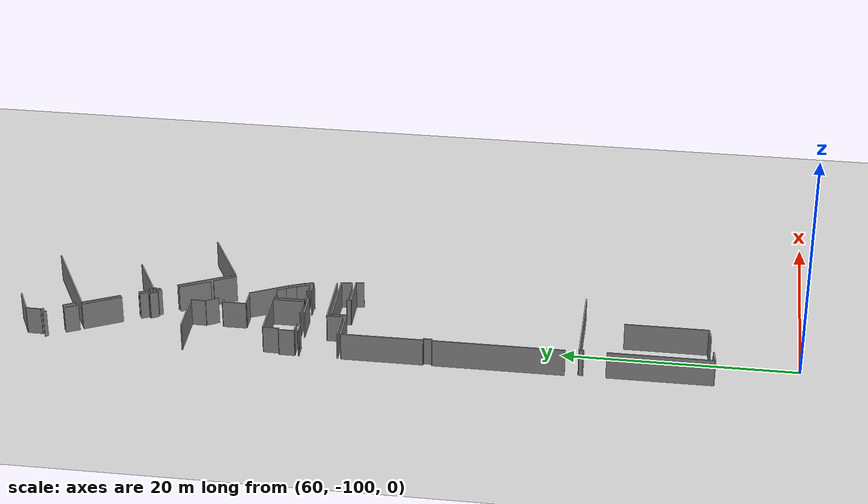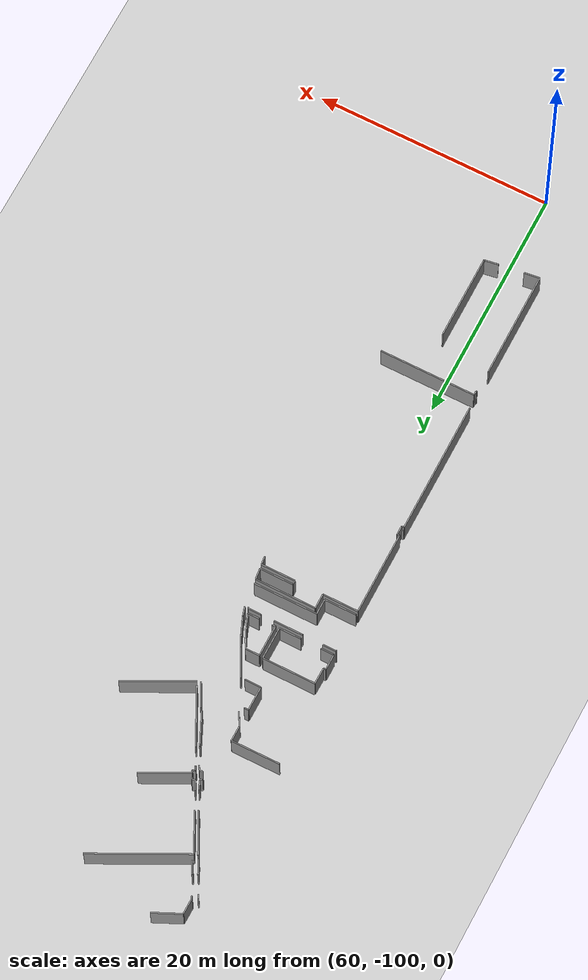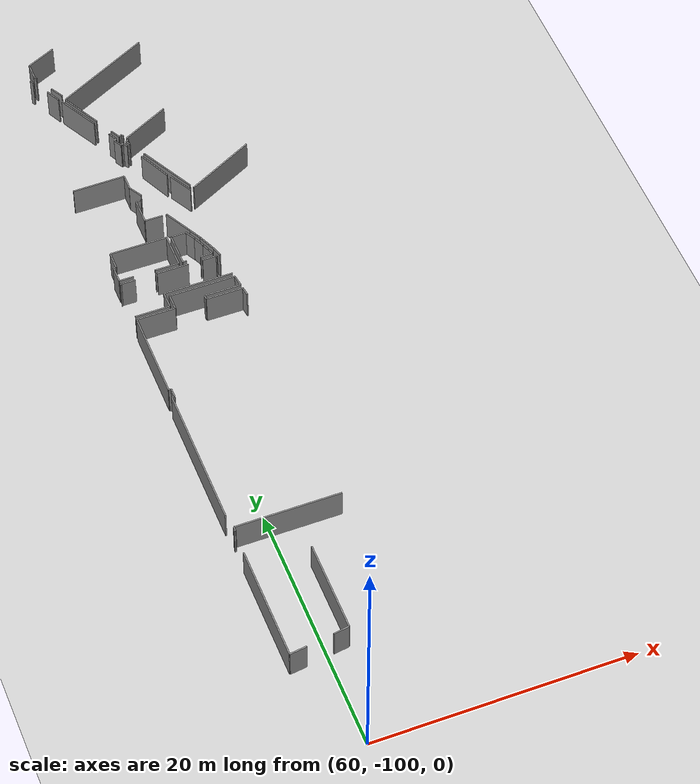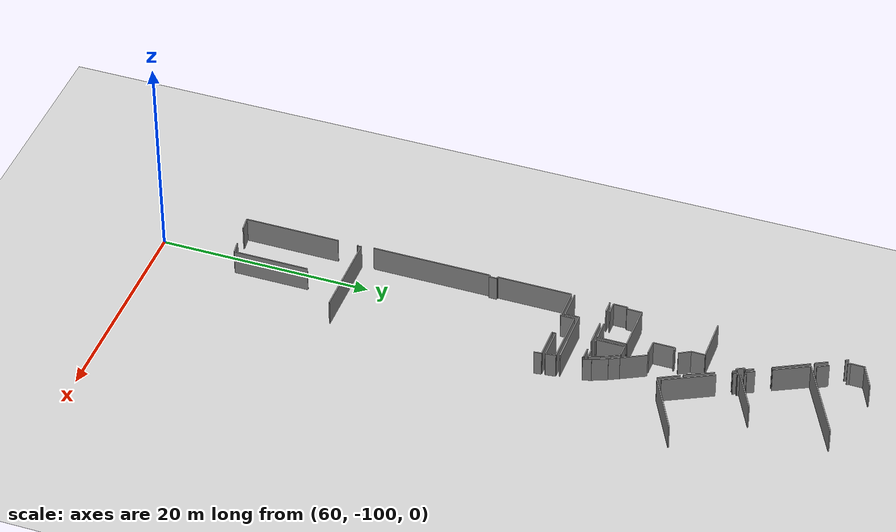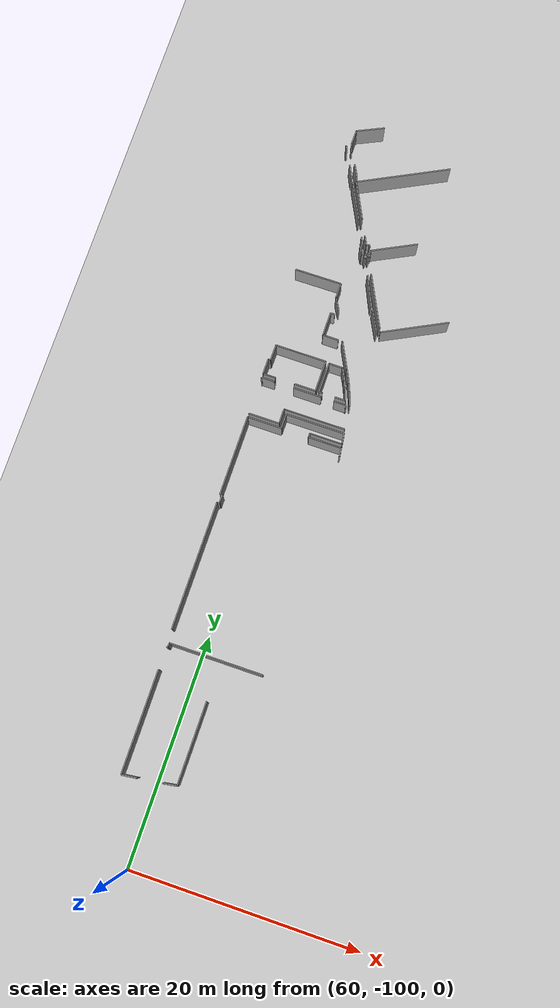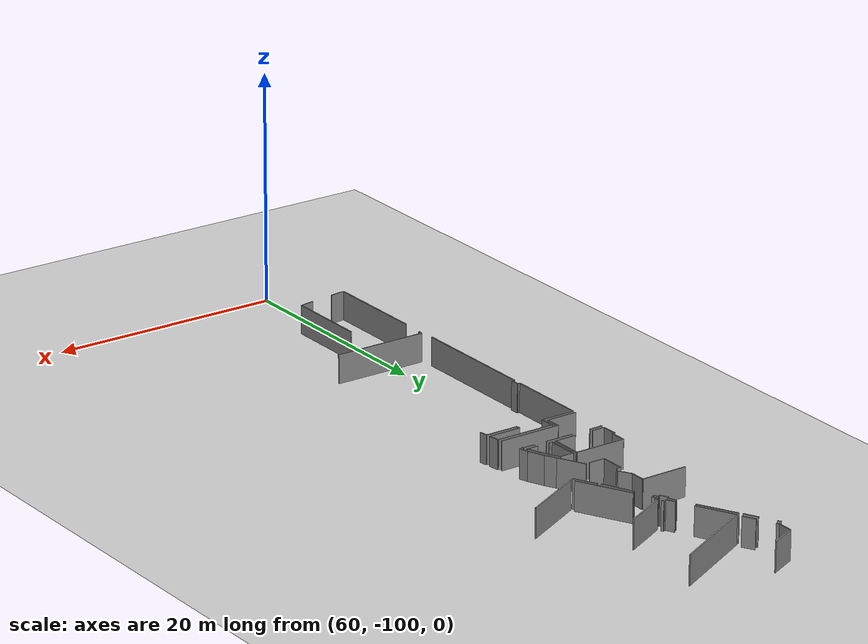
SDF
<sdf version="1.6">
 <world name="default">
  <model name="ground_plane">
   <static>1</static>
   <link name="link">
    <collision name="collision">
     <geometry><plane><normal>0 0 1</normal><size>100 100</size></plane></geometry>
     <surface><friction><ode><mu>100</mu><mu2>50</mu2></ode></friction></surface>
    </collision>
    <visual name="visual">
     <cast_shadows>0</cast_shadows>
     <geometry><plane><normal>0 0 1</normal><size>100 100</size></plane></geometry>
     <material>
      <script><uri>file://media/materials/scripts/gazebo.material</uri><name>Gazebo/Grey</name></script>
     </material>
    </visual>
   </link>
  </model>
  <model name="0510045925_40">
   <static>1</static>
   <link name="Wall_1786">
    <collision name="Wall_1786_Collision">
     <geometry><box><size>1.14283598722 0.1 2.5</size></box></geometry>
     <pose>0.571417993608 0 1.25 0 0 0</pose>
    </collision>
    <visual name="Wall_1786_Visual">
     <pose>0.571417993608 0 1.25 0 0 0</pose>
     <geometry><box><size>1.14283598722 0.1 2.5</size></box></geometry>
     <material>
      <script><uri>file://media/materials/scripts/gazebo.material</uri><name>Gazebo/Grey</name></script>
      <ambient>1 1 1 1</ambient>
     </material>
    </visual>
    <pose>192.903276567 -139.383188244 0 0 0 2.07110013863</pose>
   </link>
   <link name="Wall_1787">
    <collision name="Wall_1787_Collision">
     <geometry><box><size>0.269756081567 0.1 2.5</size></box></geometry>
     <pose>0.134878040784 0 1.25 0 0 0</pose>
    </collision>
    <visual name="Wall_1787_Visual">
     <pose>0.134878040784 0 1.25 0 0 0</pose>
     <geometry><box><size>0.269756081567 0.1 2.5</size></box></geometry>
     <material>
      <script><uri>file://media/materials/scripts/gazebo.material</uri><name>Gazebo/Grey</name></script>
      <ambient>1 1 1 1</ambient>
     </material>
    </visual>
    <pose>191.623359813 -136.926651608 0 0 0 1.98730113189</pose>
   </link>
   <link name="Wall_1788">
    <collision name="Wall_1788_Collision">
     <geometry><box><size>1.27564668014 0.1 2.5</size></box></geometry>
     <pose>0.637823340068 0 1.25 0 0 0</pose>
    </collision>
    <visual name="Wall_1788_Visual">
     <pose>0.637823340068 0 1.25 0 0 0</pose>
     <geometry><box><size>1.27564668014 0.1 2.5</size></box></geometry>
     <material>
      <script><uri>file://media/materials/scripts/gazebo.material</uri><name>Gazebo/Grey</name></script>
      <ambient>1 1 1 1</ambient>
     </material>
    </visual>
    <pose>191.514225527 -136.679957361 0 0 0 1.56243997534</pose>
   </link>
   <link name="Wall_1789">
    <collision name="Wall_1789_Collision">
     <geometry><box><size>2.46984820582 0.1 2.5</size></box></geometry>
     <pose>1.23492410291 0 1.25 0 0 0</pose>
    </collision>
    <visual name="Wall_1789_Visual">
     <pose>1.23492410291 0 1.25 0 0 0</pose>
     <geometry><box><size>2.46984820582 0.1 2.5</size></box></geometry>
     <material>
      <script><uri>file://media/materials/scripts/gazebo.material</uri><name>Gazebo/Grey</name></script>
      <ambient>1 1 1 1</ambient>
     </material>
    </visual>
    <pose>191.524885155 -135.404355219 0 0 0 0.437955658448</pose>
   </link>
   <link name="Wall_1792">
    <collision name="Wall_1792_Collision">
     <geometry><box><size>0.318721193554 0.1 2.5</size></box></geometry>
     <pose>0.159360596777 0 1.25 0 0 0</pose>
    </collision>
    <visual name="Wall_1792_Visual">
     <pose>0.159360596777 0 1.25 0 0 0</pose>
     <geometry><box><size>0.318721193554 0.1 2.5</size></box></geometry>
     <material>
      <script><uri>file://media/materials/scripts/gazebo.material</uri><name>Gazebo/Grey</name></script>
      <ambient>1 1 1 1</ambient>
     </material>
    </visual>
    <pose>191.104845055 -136.962691302 0 0 0 -1.0690346114</pose>
   </link>
   <link name="Wall_1793">
    <collision name="Wall_1793_Collision">
     <geometry><box><size>1.2517577445 0.1 2.5</size></box></geometry>
     <pose>0.625878872251 0 1.25 0 0 0</pose>
    </collision>
    <visual name="Wall_1793_Visual">
     <pose>0.625878872251 0 1.25 0 0 0</pose>
     <geometry><box><size>1.2517577445 0.1 2.5</size></box></geometry>
     <material>
      <script><uri>file://media/materials/scripts/gazebo.material</uri><name>Gazebo/Grey</name></script>
      <ambient>1 1 1 1</ambient>
     </material>
    </visual>
    <pose>191.974366133 -138.582193345 0 0 0 -1.11567226908</pose>
   </link>
   <link name="Wall_1794">
    <collision name="Wall_1794_Collision">
     <geometry><box><size>8.23932052762 0.1 2.5</size></box></geometry>
     <pose>4.11966026381 0 1.25 0 0 0</pose>
    </collision>
    <visual name="Wall_1794_Visual">
     <pose>4.11966026381 0 1.25 0 0 0</pose>
     <geometry><box><size>8.23932052762 0.1 2.5</size></box></geometry>
     <material>
      <script><uri>file://media/materials/scripts/gazebo.material</uri><name>Gazebo/Grey</name></script>
      <ambient>1 1 1 1</ambient>
     </material>
    </visual>
    <pose>193.014187457 -139.861094896 0 0 0 0.471334572719</pose>
   </link>
   <link name="Wall_1802">
    <collision name="Wall_1802_Collision">
     <geometry><box><size>0.208212626875 0.1 2.5</size></box></geometry>
     <pose>0.104106313437 0 1.25 0 0 0</pose>
    </collision>
    <visual name="Wall_1802_Visual">
     <pose>0.104106313437 0 1.25 0 0 0</pose>
     <geometry><box><size>0.208212626875 0.1 2.5</size></box></geometry>
     <material>
      <script><uri>file://media/materials/scripts/gazebo.material</uri><name>Gazebo/Grey</name></script>
      <ambient>1 1 1 1</ambient>
     </material>
    </visual>
    <pose>195.978071623 -145.123905485 0 0 0 2.09553657682</pose>
   </link>
   <link name="Wall_1803">
    <collision name="Wall_1803_Collision">
     <geometry><box><size>0.252465843436 0.1 2.5</size></box></geometry>
     <pose>0.126232921718 0 1.25 0 0 0</pose>
    </collision>
    <visual name="Wall_1803_Visual">
     <pose>0.126232921718 0 1.25 0 0 0</pose>
     <geometry><box><size>0.252465843436 0.1 2.5</size></box></geometry>
     <material>
      <script><uri>file://media/materials/scripts/gazebo.material</uri><name>Gazebo/Grey</name></script>
      <ambient>1 1 1 1</ambient>
     </material>
    </visual>
    <pose>195.873759549 -144.943707013 0 0 0 -2.69458020059</pose>
   </link>
   <link name="Wall_1804">
    <collision name="Wall_1804_Collision">
     <geometry><box><size>0.831318528219 0.1 2.5</size></box></geometry>
     <pose>0.41565926411 0 1.25 0 0 0</pose>
    </collision>
    <visual name="Wall_1804_Visual">
     <pose>0.41565926411 0 1.25 0 0 0</pose>
     <geometry><box><size>0.831318528219 0.1 2.5</size></box></geometry>
     <material>
      <script><uri>file://media/materials/scripts/gazebo.material</uri><name>Gazebo/Grey</name></script>
      <ambient>1 1 1 1</ambient>
     </material>
    </visual>
    <pose>195.646100353 -145.052841298 0 0 0 2.04168029228</pose>
   </link>
   <link name="Wall_1805">
    <collision name="Wall_1805_Collision">
     <geometry><box><size>3.42667240961 0.1 2.5</size></box></geometry>
     <pose>1.7133362048 0 1.25 0 0 0</pose>
    </collision>
    <visual name="Wall_1805_Visual">
     <pose>1.7133362048 0 1.25 0 0 0</pose>
     <geometry><box><size>3.42667240961 0.1 2.5</size></box></geometry>
     <material>
      <script><uri>file://media/materials/scripts/gazebo.material</uri><name>Gazebo/Grey</name></script>
      <ambient>1 1 1 1</ambient>
     </material>
    </visual>
    <pose>194.555265095 -142.921677115 0 0 0 2.03725943018</pose>
   </link>
   <link name="Wall_1806">
    <collision name="Wall_1806_Collision">
     <geometry><box><size>4.12377671291 0.1 2.5</size></box></geometry>
     <pose>2.06188835645 0 1.25 0 0 0</pose>
    </collision>
    <visual name="Wall_1806_Visual">
     <pose>2.06188835645 0 1.25 0 0 0</pose>
     <geometry><box><size>4.12377671291 0.1 2.5</size></box></geometry>
     <material>
      <script><uri>file://media/materials/scripts/gazebo.material</uri><name>Gazebo/Grey</name></script>
      <ambient>1 1 1 1</ambient>
     </material>
    </visual>
    <pose>196.128067816 -145.414507246 0 0 0 0.470446106003</pose>
   </link>
   <link name="Wall_1813">
    <collision name="Wall_1813_Collision">
     <geometry><box><size>4.86951748035 0.1 2.5</size></box></geometry>
     <pose>2.43475874018 0 1.25 0 0 0</pose>
    </collision>
    <visual name="Wall_1813_Visual">
     <pose>2.43475874018 0 1.25 0 0 0</pose>
     <geometry><box><size>4.86951748035 0.1 2.5</size></box></geometry>
     <material>
      <script><uri>file://media/materials/scripts/gazebo.material</uri><name>Gazebo/Grey</name></script>
      <ambient>1 1 1 1</ambient>
     </material>
    </visual>
    <pose>199.064033908 -151.740996421 0 0 0 2.04148328247</pose>
   </link>
   <link name="Wall_1814">
    <collision name="Wall_1814_Collision">
     <geometry><box><size>0.369115963655 0.1 2.5</size></box></geometry>
     <pose>0.184557981828 0 1.25 0 0 0</pose>
    </collision>
    <visual name="Wall_1814_Visual">
     <pose>0.184557981828 0 1.25 0 0 0</pose>
     <geometry><box><size>0.369115963655 0.1 2.5</size></box></geometry>
     <material>
      <script><uri>file://media/materials/scripts/gazebo.material</uri><name>Gazebo/Grey</name></script>
      <ambient>1 1 1 1</ambient>
     </material>
    </visual>
    <pose>196.16410751 -146.06499835 0 0 0 2.05966159718</pose>
   </link>
   <link name="Wall_1815">
    <collision name="Wall_1815_Collision">
     <geometry><box><size>0.245527188292 0.1 2.5</size></box></geometry>
     <pose>0.122763594146 0 1.25 0 0 0</pose>
    </collision>
    <visual name="Wall_1815_Visual">
     <pose>0.122763594146 0 1.25 0 0 0</pose>
     <geometry><box><size>0.245527188292 0.1 2.5</size></box></geometry>
     <material>
      <script><uri>file://media/materials/scripts/gazebo.material</uri><name>Gazebo/Grey</name></script>
      <ambient>1 1 1 1</ambient>
     </material>
    </visual>
    <pose>195.990761656 -145.739118296 0 0 0 0.508504125957</pose>
   </link>
   <link name="Wall_1816">
    <collision name="Wall_1816_Collision">
     <geometry><box><size>0.219105101264 0.1 2.5</size></box></geometry>
     <pose>0.109552550632 0 1.25 0 0 0</pose>
    </collision>
    <visual name="Wall_1816_Visual">
     <pose>0.109552550632 0 1.25 0 0 0</pose>
     <geometry><box><size>0.219105101264 0.1 2.5</size></box></geometry>
     <material>
      <script><uri>file://media/materials/scripts/gazebo.material</uri><name>Gazebo/Grey</name></script>
      <ambient>1 1 1 1</ambient>
     </material>
    </visual>
    <pose>196.205223218 -145.619578183 0 0 0 1.93065159534</pose>
   </link>
   <link name="Wall_1820">
    <collision name="Wall_1820_Collision">
     <geometry><box><size>3.50888587217 0.1 2.5</size></box></geometry>
     <pose>1.75444293609 0 1.25 0 0 0</pose>
    </collision>
    <visual name="Wall_1820_Visual">
     <pose>1.75444293609 0 1.25 0 0 0</pose>
     <geometry><box><size>3.50888587217 0.1 2.5</size></box></geometry>
     <material>
      <script><uri>file://media/materials/scripts/gazebo.material</uri><name>Gazebo/Grey</name></script>
      <ambient>1 1 1 1</ambient>
     </material>
    </visual>
    <pose>192.703281643 -139.956016345 0 0 0 -1.09456527227</pose>
   </link>
   <link name="Wall_1821">
    <collision name="Wall_1821_Collision">
     <geometry><box><size>0.777887155331 0.1 2.5</size></box></geometry>
     <pose>0.388943577665 0 1.25 0 0 0</pose>
    </collision>
    <visual name="Wall_1821_Visual">
     <pose>0.388943577665 0 1.25 0 0 0</pose>
     <geometry><box><size>0.777887155331 0.1 2.5</size></box></geometry>
     <material>
      <script><uri>file://media/materials/scripts/gazebo.material</uri><name>Gazebo/Grey</name></script>
      <ambient>1 1 1 1</ambient>
     </material>
    </visual>
    <pose>195.023273521 -144.488134819 0 0 0 -1.13385379663</pose>
   </link>
   <link name="Wall_1822">
    <collision name="Wall_1822_Collision">
     <geometry><box><size>0.212268716618 0.1 2.5</size></box></geometry>
     <pose>0.106134358309 0 1.25 0 0 0</pose>
    </collision>
    <visual name="Wall_1822_Visual">
     <pose>0.106134358309 0 1.25 0 0 0</pose>
     <geometry><box><size>0.212268716618 0.1 2.5</size></box></geometry>
     <material>
      <script><uri>file://media/materials/scripts/gazebo.material</uri><name>Gazebo/Grey</name></script>
      <ambient>1 1 1 1</ambient>
     </material>
    </visual>
    <pose>195.352452983 -145.192939266 0 0 0 -2.5346868293</pose>
   </link>
   <link name="Wall_1823">
    <collision name="Wall_1823_Collision">
     <geometry><box><size>0.719958051142 0.1 2.5</size></box></geometry>
     <pose>0.359979025571 0 1.25 0 0 0</pose>
    </collision>
    <visual name="Wall_1823_Visual">
     <pose>0.359979025571 0 1.25 0 0 0</pose>
     <geometry><box><size>0.719958051142 0.1 2.5</size></box></geometry>
     <material>
      <script><uri>file://media/materials/scripts/gazebo.material</uri><name>Gazebo/Grey</name></script>
      <ambient>1 1 1 1</ambient>
     </material>
    </visual>
    <pose>195.178091927 -145.314002183 0 0 0 -1.08160625321</pose>
   </link>
   <link name="Wall_1824">
    <collision name="Wall_1824_Collision">
     <geometry><box><size>0.221331060436 0.1 2.5</size></box></geometry>
     <pose>0.110665530218 0 1.25 0 0 0</pose>
    </collision>
    <visual name="Wall_1824_Visual">
     <pose>0.110665530218 0 1.25 0 0 0</pose>
     <geometry><box><size>0.221331060436 0.1 2.5</size></box></geometry>
     <material>
      <script><uri>file://media/materials/scripts/gazebo.material</uri><name>Gazebo/Grey</name></script>
      <ambient>1 1 1 1</ambient>
     </material>
    </visual>
    <pose>195.516408213 -145.949519048 0 0 0 0.463647609001</pose>
   </link>
   <link name="Wall_1825">
    <collision name="Wall_1825_Collision">
     <geometry><box><size>0.423774459512 0.1 2.5</size></box></geometry>
     <pose>0.211887229756 0 1.25 0 0 0</pose>
    </collision>
    <visual name="Wall_1825_Visual">
     <pose>0.211887229756 0 1.25 0 0 0</pose>
     <geometry><box><size>0.423774459512 0.1 2.5</size></box></geometry>
     <material>
      <script><uri>file://media/materials/scripts/gazebo.material</uri><name>Gazebo/Grey</name></script>
      <ambient>1 1 1 1</ambient>
     </material>
    </visual>
    <pose>195.714372732 -145.850536788 0 0 0 -1.0283225977</pose>
   </link>
   <link name="Wall_1826">
    <collision name="Wall_1826_Collision">
     <geometry><box><size>2.80547367877 0.1 2.5</size></box></geometry>
     <pose>1.40273683938 0 1.25 0 0 0</pose>
    </collision>
    <visual name="Wall_1826_Visual">
     <pose>1.40273683938 0 1.25 0 0 0</pose>
     <geometry><box><size>2.80547367877 0.1 2.5</size></box></geometry>
     <material>
      <script><uri>file://media/materials/scripts/gazebo.material</uri><name>Gazebo/Grey</name></script>
      <ambient>1 1 1 1</ambient>
     </material>
    </visual>
    <pose>196.603690262 -147.585771935 0 0 0 -1.13850860152</pose>
   </link>
   <link name="Wall_1827">
    <collision name="Wall_1827_Collision">
     <geometry><box><size>1.1773244121 0.1 2.5</size></box></geometry>
     <pose>0.588662206051 0 1.25 0 0 0</pose>
    </collision>
    <visual name="Wall_1827_Visual">
     <pose>0.588662206051 0 1.25 0 0 0</pose>
     <geometry><box><size>1.1773244121 0.1 2.5</size></box></geometry>
     <material>
      <script><uri>file://media/materials/scripts/gazebo.material</uri><name>Gazebo/Grey</name></script>
      <ambient>1 1 1 1</ambient>
     </material>
    </visual>
    <pose>195.26336895 -151.356488414 0 0 0 2.08932745141</pose>
   </link>
   <link name="Wall_1828">
    <collision name="Wall_1828_Collision">
     <geometry><box><size>1.2789324003 0.1 2.5</size></box></geometry>
     <pose>0.639466200151 0 1.25 0 0 0</pose>
    </collision>
    <visual name="Wall_1828_Visual">
     <pose>0.639466200151 0 1.25 0 0 0</pose>
     <geometry><box><size>1.2789324003 0.1 2.5</size></box></geometry>
     <material>
      <script><uri>file://media/materials/scripts/gazebo.material</uri><name>Gazebo/Grey</name></script>
      <ambient>1 1 1 1</ambient>
     </material>
    </visual>
    <pose>194.679881221 -150.333925535 0 0 0 1.56385061591</pose>
   </link>
   <link name="Wall_1829">
    <collision name="Wall_1829_Collision">
     <geometry><box><size>4.08966029582 0.1 2.5</size></box></geometry>
     <pose>2.04483014791 0 1.25 0 0 0</pose>
    </collision>
    <visual name="Wall_1829_Visual">
     <pose>2.04483014791 0 1.25 0 0 0</pose>
     <geometry><box><size>4.08966029582 0.1 2.5</size></box></geometry>
     <material>
      <script><uri>file://media/materials/scripts/gazebo.material</uri><name>Gazebo/Grey</name></script>
      <ambient>1 1 1 1</ambient>
     </material>
    </visual>
    <pose>194.688764245 -149.055023984 0 0 0 -3.13246983835</pose>
   </link>
   <link name="Wall_1830">
    <collision name="Wall_1830_Collision">
     <geometry><box><size>4.44811045405 0.1 2.5</size></box></geometry>
     <pose>2.22405522702 0 1.25 0 0 0</pose>
    </collision>
    <visual name="Wall_1830_Visual">
     <pose>2.22405522702 0 1.25 0 0 0</pose>
     <geometry><box><size>4.44811045405 0.1 2.5</size></box></geometry>
     <material>
      <script><uri>file://media/materials/scripts/gazebo.material</uri><name>Gazebo/Grey</name></script>
      <ambient>1 1 1 1</ambient>
     </material>
    </visual>
    <pose>191.212710337 -156.001548184 0 0 0 0.0</pose>
   </link>
   <link name="Wall_1831">
    <collision name="Wall_1831_Collision">
     <geometry><box><size>2.7131291084 0.1 2.5</size></box></geometry>
     <pose>1.3565645542 0 1.25 0 0 0</pose>
    </collision>
    <visual name="Wall_1831_Visual">
     <pose>1.3565645542 0 1.25 0 0 0</pose>
     <geometry><box><size>2.7131291084 0.1 2.5</size></box></geometry>
     <material>
      <script><uri>file://media/materials/scripts/gazebo.material</uri><name>Gazebo/Grey</name></script>
      <ambient>1 1 1 1</ambient>
     </material>
    </visual>
    <pose>195.660820791 -156.001548184 0 0 0 -1.57079632679</pose>
   </link>
   <link name="Wall_1832">
    <collision name="Wall_1832_Collision">
     <geometry><box><size>1.86974949874 0.1 2.5</size></box></geometry>
     <pose>0.934874749372 0 1.25 0 0 0</pose>
    </collision>
    <visual name="Wall_1832_Visual">
     <pose>0.934874749372 0 1.25 0 0 0</pose>
     <geometry><box><size>1.86974949874 0.1 2.5</size></box></geometry>
     <material>
      <script><uri>file://media/materials/scripts/gazebo.material</uri><name>Gazebo/Grey</name></script>
      <ambient>1 1 1 1</ambient>
     </material>
    </visual>
    <pose>195.660820791 -158.714677292 0 0 0 3.14159265359</pose>
   </link>
   <link name="Wall_1833">
    <collision name="Wall_1833_Collision">
     <geometry><box><size>1.10631709855 0.1 2.5</size></box></geometry>
     <pose>0.553158549275 0 1.25 0 0 0</pose>
    </collision>
    <visual name="Wall_1833_Visual">
     <pose>0.553158549275 0 1.25 0 0 0</pose>
     <geometry><box><size>1.10631709855 0.1 2.5</size></box></geometry>
     <material>
      <script><uri>file://media/materials/scripts/gazebo.material</uri><name>Gazebo/Grey</name></script>
      <ambient>1 1 1 1</ambient>
     </material>
    </visual>
    <pose>192.099489861 -158.714677292 0 0 0 3.14159265359</pose>
   </link>
   <link name="Wall_1834">
    <collision name="Wall_1834_Collision">
     <geometry><box><size>1.32940788305 0.1 2.5</size></box></geometry>
     <pose>0.664703941524 0 1.25 0 0 0</pose>
    </collision>
    <visual name="Wall_1834_Visual">
     <pose>0.664703941524 0 1.25 0 0 0</pose>
     <geometry><box><size>1.32940788305 0.1 2.5</size></box></geometry>
     <material>
      <script><uri>file://media/materials/scripts/gazebo.material</uri><name>Gazebo/Grey</name></script>
      <ambient>1 1 1 1</ambient>
     </material>
    </visual>
    <pose>190.993172762 -158.714677292 0 0 0 1.57079632679</pose>
   </link>
   <link name="Wall_1835">
    <collision name="Wall_1835_Collision">
     <geometry><box><size>0.199487322657 0.1 2.5</size></box></geometry>
     <pose>0.0997436613284 0 1.25 0 0 0</pose>
    </collision>
    <visual name="Wall_1835_Visual">
     <pose>0.0997436613284 0 1.25 0 0 0</pose>
     <geometry><box><size>0.199487322657 0.1 2.5</size></box></geometry>
     <material>
      <script><uri>file://media/materials/scripts/gazebo.material</uri><name>Gazebo/Grey</name></script>
      <ambient>1 1 1 1</ambient>
     </material>
    </visual>
    <pose>190.993172762 -157.385269409 0 0 0 0.0</pose>
   </link>
   <link name="Wall_1836">
    <collision name="Wall_1836_Collision">
     <geometry><box><size>1.38386648276 0.1 2.5</size></box></geometry>
     <pose>0.691933241381 0 1.25 0 0 0</pose>
    </collision>
    <visual name="Wall_1836_Visual">
     <pose>0.691933241381 0 1.25 0 0 0</pose>
     <geometry><box><size>1.38386648276 0.1 2.5</size></box></geometry>
     <material>
      <script><uri>file://media/materials/scripts/gazebo.material</uri><name>Gazebo/Grey</name></script>
      <ambient>1 1 1 1</ambient>
     </material>
    </visual>
    <pose>191.192660085 -157.385269409 0 0 0 1.55630724542</pose>
   </link>
   <link name="Wall_1837">
    <collision name="Wall_1837_Collision">
     <geometry><box><size>2.64257252354 0.1 2.5</size></box></geometry>
     <pose>1.32128626177 0 1.25 0 0 0</pose>
    </collision>
    <visual name="Wall_1837_Visual">
     <pose>1.32128626177 0 1.25 0 0 0</pose>
     <geometry><box><size>2.64257252354 0.1 2.5</size></box></geometry>
     <material>
      <script><uri>file://media/materials/scripts/gazebo.material</uri><name>Gazebo/Grey</name></script>
      <ambient>1 1 1 1</ambient>
     </material>
    </visual>
    <pose>195.98467044 -158.711124083 0 0 0 1.57079632679</pose>
   </link>
   <link name="Wall_1838">
    <collision name="Wall_1838_Collision">
     <geometry><box><size>1.18880231466 0.1 2.5</size></box></geometry>
     <pose>0.594401157331 0 1.25 0 0 0</pose>
    </collision>
    <visual name="Wall_1838_Visual">
     <pose>0.594401157331 0 1.25 0 0 0</pose>
     <geometry><box><size>1.18880231466 0.1 2.5</size></box></geometry>
     <material>
      <script><uri>file://media/materials/scripts/gazebo.material</uri><name>Gazebo/Grey</name></script>
      <ambient>1 1 1 1</ambient>
     </material>
    </visual>
    <pose>195.98467044 -156.06855156 0 0 0 0.0</pose>
   </link>
   <link name="Wall_1839">
    <collision name="Wall_1839_Collision">
     <geometry><box><size>0.86552014304 0.1 2.5</size></box></geometry>
     <pose>0.43276007152 0 1.25 0 0 0</pose>
    </collision>
    <visual name="Wall_1839_Visual">
     <pose>0.43276007152 0 1.25 0 0 0</pose>
     <geometry><box><size>0.86552014304 0.1 2.5</size></box></geometry>
     <material>
      <script><uri>file://media/materials/scripts/gazebo.material</uri><name>Gazebo/Grey</name></script>
      <ambient>1 1 1 1</ambient>
     </material>
    </visual>
    <pose>197.173472754 -156.06855156 0 0 0 -1.08144271938</pose>
   </link>
   <link name="Wall_1840">
    <collision name="Wall_1840_Collision">
     <geometry><box><size>0.921106952745 0.1 2.5</size></box></geometry>
     <pose>0.460553476372 0 1.25 0 0 0</pose>
    </collision>
    <visual name="Wall_1840_Visual">
     <pose>0.460553476372 0 1.25 0 0 0</pose>
     <geometry><box><size>0.921106952745 0.1 2.5</size></box></geometry>
     <material>
      <script><uri>file://media/materials/scripts/gazebo.material</uri><name>Gazebo/Grey</name></script>
      <ambient>1 1 1 1</ambient>
     </material>
    </visual>
    <pose>197.58031522 -156.832491561 0 0 0 -1.15226425327</pose>
   </link>
   <link name="Wall_1841">
    <collision name="Wall_1841_Collision">
     <geometry><box><size>1.09408194477 0.1 2.5</size></box></geometry>
     <pose>0.547040972383 0 1.25 0 0 0</pose>
    </collision>
    <visual name="Wall_1841_Visual">
     <pose>0.547040972383 0 1.25 0 0 0</pose>
     <geometry><box><size>1.09408194477 0.1 2.5</size></box></geometry>
     <material>
      <script><uri>file://media/materials/scripts/gazebo.material</uri><name>Gazebo/Grey</name></script>
      <ambient>1 1 1 1</ambient>
     </material>
    </visual>
    <pose>197.954671201 -157.674094566 0 0 0 -1.20721995922</pose>
   </link>
   <link name="Wall_1842">
    <collision name="Wall_1842_Collision">
     <geometry><box><size>0.95987411487 0.1 2.5</size></box></geometry>
     <pose>0.479937057435 0 1.25 0 0 0</pose>
    </collision>
    <visual name="Wall_1842_Visual">
     <pose>0.479937057435 0 1.25 0 0 0</pose>
     <geometry><box><size>0.95987411487 0.1 2.5</size></box></geometry>
     <material>
      <script><uri>file://media/materials/scripts/gazebo.material</uri><name>Gazebo/Grey</name></script>
      <ambient>1 1 1 1</ambient>
     </material>
    </visual>
    <pose>198.343747621 -158.696657445 0 0 0 3.14159265359</pose>
   </link>
   <link name="Wall_1843">
    <collision name="Wall_1843_Collision">
     <geometry><box><size>0.294763987388 0.1 2.5</size></box></geometry>
     <pose>0.147381993694 0 1.25 0 0 0</pose>
    </collision>
    <visual name="Wall_1843_Visual">
     <pose>0.147381993694 0 1.25 0 0 0</pose>
     <geometry><box><size>0.294763987388 0.1 2.5</size></box></geometry>
     <material>
      <script><uri>file://media/materials/scripts/gazebo.material</uri><name>Gazebo/Grey</name></script>
      <ambient>1 1 1 1</ambient>
     </material>
    </visual>
    <pose>196.279079211 -158.696657445 0 0 0 -3.0924942138</pose>
   </link>
   <link name="Wall_1845">
    <collision name="Wall_1845_Collision">
     <geometry><box><size>0.0873074287455 0.1 2.5</size></box></geometry>
     <pose>0.0436537143727 0 1.25 0 0 0</pose>
    </collision>
    <visual name="Wall_1845_Visual">
     <pose>0.0436537143727 0 1.25 0 0 0</pose>
     <geometry><box><size>0.0873074287455 0.1 2.5</size></box></geometry>
     <material>
      <script><uri>file://media/materials/scripts/gazebo.material</uri><name>Gazebo/Grey</name></script>
      <ambient>1 1 1 1</ambient>
     </material>
    </visual>
    <pose>190.98073653 -159.138016802 0 0 0 1.57079632679</pose>
   </link>
   <link name="Wall_1846">
    <collision name="Wall_1846_Collision">
     <geometry><box><size>1.13525037436 0.1 2.5</size></box></geometry>
     <pose>0.567625187178 0 1.25 0 0 0</pose>
    </collision>
    <visual name="Wall_1846_Visual">
     <pose>0.567625187178 0 1.25 0 0 0</pose>
     <geometry><box><size>1.13525037436 0.1 2.5</size></box></geometry>
     <material>
      <script><uri>file://media/materials/scripts/gazebo.material</uri><name>Gazebo/Grey</name></script>
      <ambient>1 1 1 1</ambient>
     </material>
    </visual>
    <pose>190.98073653 -159.050709373 0 0 0 0.0</pose>
   </link>
   <link name="Wall_1847">
    <collision name="Wall_1847_Collision">
     <geometry><box><size>2.46364305474 0.1 2.5</size></box></geometry>
     <pose>1.23182152737 0 1.25 0 0 0</pose>
    </collision>
    <visual name="Wall_1847_Visual">
     <pose>1.23182152737 0 1.25 0 0 0</pose>
     <geometry><box><size>2.46364305474 0.1 2.5</size></box></geometry>
     <material>
      <script><uri>file://media/materials/scripts/gazebo.material</uri><name>Gazebo/Grey</name></script>
      <ambient>1 1 1 1</ambient>
     </material>
    </visual>
    <pose>193.829902794 -159.050709373 0 0 0 0.0</pose>
   </link>
   <link name="Wall_1848">
    <collision name="Wall_1848_Collision">
     <geometry><box><size>1.07535341743 0.1 2.5</size></box></geometry>
     <pose>0.537676708713 0 1.25 0 0 0</pose>
    </collision>
    <visual name="Wall_1848_Visual">
     <pose>0.537676708713 0 1.25 0 0 0</pose>
     <geometry><box><size>1.07535341743 0.1 2.5</size></box></geometry>
     <material>
      <script><uri>file://media/materials/scripts/gazebo.material</uri><name>Gazebo/Grey</name></script>
      <ambient>1 1 1 1</ambient>
     </material>
    </visual>
    <pose>197.41610619 -159.050709373 0 0 0 0.0</pose>
   </link>
   <link name="Wall_1849">
    <collision name="Wall_1849_Collision">
     <geometry><box><size>0.119936860304 0.1 2.5</size></box></geometry>
     <pose>0.0599684301519 0 1.25 0 0 0</pose>
    </collision>
    <visual name="Wall_1849_Visual">
     <pose>0.0599684301519 0 1.25 0 0 0</pose>
     <geometry><box><size>0.119936860304 0.1 2.5</size></box></geometry>
     <material>
      <script><uri>file://media/materials/scripts/gazebo.material</uri><name>Gazebo/Grey</name></script>
      <ambient>1 1 1 1</ambient>
     </material>
    </visual>
    <pose>198.491459608 -159.050709373 0 0 0 -1.14311804596</pose>
   </link>
   <link name="Wall_1850">
    <collision name="Wall_1850_Collision">
     <geometry><box><size>5.38032029644 0.1 2.5</size></box></geometry>
     <pose>2.69016014822 0 1.25 0 0 0</pose>
    </collision>
    <visual name="Wall_1850_Visual">
     <pose>2.69016014822 0 1.25 0 0 0</pose>
     <geometry><box><size>5.38032029644 0.1 2.5</size></box></geometry>
     <material>
      <script><uri>file://media/materials/scripts/gazebo.material</uri><name>Gazebo/Grey</name></script>
      <ambient>1 1 1 1</ambient>
     </material>
    </visual>
    <pose>199.052866679 -161.06867846 0 0 0 3.14159265359</pose>
   </link>
   <link name="Wall_1851">
    <collision name="Wall_1851_Collision">
     <geometry><box><size>1.30098220857 0.1 2.5</size></box></geometry>
     <pose>0.650491104287 0 1.25 0 0 0</pose>
    </collision>
    <visual name="Wall_1851_Visual">
     <pose>0.650491104287 0 1.25 0 0 0</pose>
     <geometry><box><size>1.30098220857 0.1 2.5</size></box></geometry>
     <material>
      <script><uri>file://media/materials/scripts/gazebo.material</uri><name>Gazebo/Grey</name></script>
      <ambient>1 1 1 1</ambient>
     </material>
    </visual>
    <pose>193.672546382 -161.06867846 0 0 0 -1.57079632679</pose>
   </link>
   <link name="Wall_1852">
    <collision name="Wall_1852_Collision">
     <geometry><box><size>2.69181674435 0.1 2.5</size></box></geometry>
     <pose>1.34590837217 0 1.25 0 0 0</pose>
    </collision>
    <visual name="Wall_1852_Visual">
     <pose>1.34590837217 0 1.25 0 0 0</pose>
     <geometry><box><size>2.69181674435 0.1 2.5</size></box></geometry>
     <material>
      <script><uri>file://media/materials/scripts/gazebo.material</uri><name>Gazebo/Grey</name></script>
      <ambient>1 1 1 1</ambient>
     </material>
    </visual>
    <pose>193.672546382 -162.369660669 0 0 0 -3.13932978738</pose>
   </link>
   <link name="Wall_1853">
    <collision name="Wall_1853_Collision">
     <geometry><box><size>11.1733204741 0.1 2.5</size></box></geometry>
     <pose>5.58666023705 0 1.25 0 0 0</pose>
    </collision>
    <visual name="Wall_1853_Visual">
     <pose>5.58666023705 0 1.25 0 0 0</pose>
     <geometry><box><size>11.1733204741 0.1 2.5</size></box></geometry>
     <material>
      <script><uri>file://media/materials/scripts/gazebo.material</uri><name>Gazebo/Grey</name></script>
      <ambient>1 1 1 1</ambient>
     </material>
    </visual>
    <pose>190.991649958 -181.581102002 0 0 0 1.57079632679</pose>
   </link>
   <link name="Wall_1854">
    <collision name="Wall_1854_Collision">
     <geometry><box><size>0.203548133296 0.1 2.5</size></box></geometry>
     <pose>0.101774066648 0 1.25 0 0 0</pose>
    </collision>
    <visual name="Wall_1854_Visual">
     <pose>0.101774066648 0 1.25 0 0 0</pose>
     <geometry><box><size>0.203548133296 0.1 2.5</size></box></geometry>
     <material>
      <script><uri>file://media/materials/scripts/gazebo.material</uri><name>Gazebo/Grey</name></script>
      <ambient>1 1 1 1</ambient>
     </material>
    </visual>
    <pose>190.991649958 -170.407781528 0 0 0 0.0</pose>
   </link>
   <link name="Wall_1855">
    <collision name="Wall_1855_Collision">
     <geometry><box><size>0.74947336362 0.1 2.5</size></box></geometry>
     <pose>0.37473668181 0 1.25 0 0 0</pose>
    </collision>
    <visual name="Wall_1855_Visual">
     <pose>0.37473668181 0 1.25 0 0 0</pose>
     <geometry><box><size>0.74947336362 0.1 2.5</size></box></geometry>
     <material>
      <script><uri>file://media/materials/scripts/gazebo.material</uri><name>Gazebo/Grey</name></script>
      <ambient>1 1 1 1</ambient>
     </material>
    </visual>
    <pose>191.195198091 -170.407781528 0 0 0 1.57079632679</pose>
   </link>
   <link name="Wall_1856">
    <collision name="Wall_1856_Collision">
     <geometry><box><size>0.204563335956 0.1 2.5</size></box></geometry>
     <pose>0.102281667978 0 1.25 0 0 0</pose>
    </collision>
    <visual name="Wall_1856_Visual">
     <pose>0.102281667978 0 1.25 0 0 0</pose>
     <geometry><box><size>0.204563335956 0.1 2.5</size></box></geometry>
     <material>
      <script><uri>file://media/materials/scripts/gazebo.material</uri><name>Gazebo/Grey</name></script>
      <ambient>1 1 1 1</ambient>
     </material>
    </visual>
    <pose>191.195198091 -169.658308165 0 0 0 3.14159265359</pose>
   </link>
   <link name="Wall_1857">
    <collision name="Wall_1857_Collision">
     <geometry><box><size>6.98256389432 0.1 2.5</size></box></geometry>
     <pose>3.49128194716 0 1.25 0 0 0</pose>
    </collision>
    <visual name="Wall_1857_Visual">
     <pose>3.49128194716 0 1.25 0 0 0</pose>
     <geometry><box><size>6.98256389432 0.1 2.5</size></box></geometry>
     <material>
      <script><uri>file://media/materials/scripts/gazebo.material</uri><name>Gazebo/Grey</name></script>
      <ambient>1 1 1 1</ambient>
     </material>
    </visual>
    <pose>190.990634755 -169.658308165 0 0 0 1.57079632679</pose>
   </link>
   <link name="Wall_1858">
    <collision name="Wall_1858_Collision">
     <geometry><box><size>2.99459404584 0.1 2.5</size></box></geometry>
     <pose>1.49729702292 0 1.25 0 0 0</pose>
    </collision>
    <visual name="Wall_1858_Visual">
     <pose>1.49729702292 0 1.25 0 0 0</pose>
     <geometry><box><size>2.99459404584 0.1 2.5</size></box></geometry>
     <material>
      <script><uri>file://media/materials/scripts/gazebo.material</uri><name>Gazebo/Grey</name></script>
      <ambient>1 1 1 1</ambient>
     </material>
    </visual>
    <pose>190.990634755 -162.67574427 0 0 0 0.0</pose>
   </link>
   <link name="Wall_1859">
    <collision name="Wall_1859_Collision">
     <geometry><box><size>1.26062790285 0.1 2.5</size></box></geometry>
     <pose>0.630313951423 0 1.25 0 0 0</pose>
    </collision>
    <visual name="Wall_1859_Visual">
     <pose>0.630313951423 0 1.25 0 0 0</pose>
     <geometry><box><size>1.26062790285 0.1 2.5</size></box></geometry>
     <material>
      <script><uri>file://media/materials/scripts/gazebo.material</uri><name>Gazebo/Grey</name></script>
      <ambient>1 1 1 1</ambient>
     </material>
    </visual>
    <pose>193.985228801 -162.67574427 0 0 0 1.57079632679</pose>
   </link>
   <link name="Wall_1860">
    <collision name="Wall_1860_Collision">
     <geometry><box><size>5.12829623614 0.1 2.5</size></box></geometry>
     <pose>2.56414811807 0 1.25 0 0 0</pose>
    </collision>
    <visual name="Wall_1860_Visual">
     <pose>2.56414811807 0 1.25 0 0 0</pose>
     <geometry><box><size>5.12829623614 0.1 2.5</size></box></geometry>
     <material>
      <script><uri>file://media/materials/scripts/gazebo.material</uri><name>Gazebo/Grey</name></script>
      <ambient>1 1 1 1</ambient>
     </material>
    </visual>
    <pose>193.985228801 -161.415116368 0 0 0 0.0</pose>
   </link>
   <link name="Wall_1861">
    <collision name="Wall_1861_Collision">
     <geometry><box><size>0.939683894865 0.1 2.5</size></box></geometry>
     <pose>0.469841947433 0 1.25 0 0 0</pose>
    </collision>
    <visual name="Wall_1861_Visual">
     <pose>0.469841947433 0 1.25 0 0 0</pose>
     <geometry><box><size>0.939683894865 0.1 2.5</size></box></geometry>
     <material>
      <script><uri>file://media/materials/scripts/gazebo.material</uri><name>Gazebo/Grey</name></script>
      <ambient>1 1 1 1</ambient>
     </material>
    </visual>
    <pose>199.113525037 -161.415116368 0 0 0 -1.44895388977</pose>
   </link>
   <link name="Wall_1862">
    <collision name="Wall_1862_Collision">
     <geometry><box><size>2.82530900231 0.1 2.5</size></box></geometry>
     <pose>1.41265450115 0 1.25 0 0 0</pose>
    </collision>
    <visual name="Wall_1862_Visual">
     <pose>1.41265450115 0 1.25 0 0 0</pose>
     <geometry><box><size>2.82530900231 0.1 2.5</size></box></geometry>
     <material>
      <script><uri>file://media/materials/scripts/gazebo.material</uri><name>Gazebo/Grey</name></script>
      <ambient>1 1 1 1</ambient>
     </material>
    </visual>
    <pose>199.227735337 -162.347833811 0 0 0 3.14159265359</pose>
   </link>
   <link name="Wall_1863">
    <collision name="Wall_1863_Collision">
     <geometry><box><size>0.339331489049 0.1 2.5</size></box></geometry>
     <pose>0.169665744524 0 1.25 0 0 0</pose>
    </collision>
    <visual name="Wall_1863_Visual">
     <pose>0.169665744524 0 1.25 0 0 0</pose>
     <geometry><box><size>0.339331489049 0.1 2.5</size></box></geometry>
     <material>
      <script><uri>file://media/materials/scripts/gazebo.material</uri><name>Gazebo/Grey</name></script>
      <ambient>1 1 1 1</ambient>
     </material>
    </visual>
    <pose>196.402426334 -162.347833811 0 0 0 -1.57079632679</pose>
   </link>
   <link name="Wall_1864">
    <collision name="Wall_1864_Collision">
     <geometry><box><size>2.8760691353 0.1 2.5</size></box></geometry>
     <pose>1.43803456765 0 1.25 0 0 0</pose>
    </collision>
    <visual name="Wall_1864_Visual">
     <pose>1.43803456765 0 1.25 0 0 0</pose>
     <geometry><box><size>2.8760691353 0.1 2.5</size></box></geometry>
     <material>
      <script><uri>file://media/materials/scripts/gazebo.material</uri><name>Gazebo/Grey</name></script>
      <ambient>1 1 1 1</ambient>
     </material>
    </visual>
    <pose>196.402426334 -162.6871653 0 0 0 0.0</pose>
   </link>
   <link name="Wall_1865">
    <collision name="Wall_1865_Collision">
     <geometry><box><size>0.704621086714 0.1 2.5</size></box></geometry>
     <pose>0.352310543357 0 1.25 0 0 0</pose>
    </collision>
    <visual name="Wall_1865_Visual">
     <pose>0.352310543357 0 1.25 0 0 0</pose>
     <geometry><box><size>0.704621086714 0.1 2.5</size></box></geometry>
     <material>
      <script><uri>file://media/materials/scripts/gazebo.material</uri><name>Gazebo/Grey</name></script>
      <ambient>1 1 1 1</ambient>
     </material>
    </visual>
    <pose>199.27849547 -162.6871653 0 0 0 -1.44402879169</pose>
   </link>
   <link name="Wall_1867">
    <collision name="Wall_1867_Collision">
     <geometry><box><size>8.95535646303 0.1 2.5</size></box></geometry>
     <pose>4.47767823152 0 1.25 0 0 0</pose>
    </collision>
    <visual name="Wall_1867_Visual">
     <pose>4.47767823152 0 1.25 0 0 0</pose>
     <geometry><box><size>8.95535646303 0.1 2.5</size></box></geometry>
     <material>
      <script><uri>file://media/materials/scripts/gazebo.material</uri><name>Gazebo/Grey</name></script>
      <ambient>1 1 1 1</ambient>
     </material>
    </visual>
    <pose>191.087586609 -193.963275044 0 0 0 1.57079632679</pose>
   </link>
   <link name="Wall_1868">
    <collision name="Wall_1868_Collision">
     <geometry><box><size>0.110149488592 0.1 2.5</size></box></geometry>
     <pose>0.0550747442958 0 1.25 0 0 0</pose>
    </collision>
    <visual name="Wall_1868_Visual">
     <pose>0.0550747442958 0 1.25 0 0 0</pose>
     <geometry><box><size>0.110149488592 0.1 2.5</size></box></geometry>
     <material>
      <script><uri>file://media/materials/scripts/gazebo.material</uri><name>Gazebo/Grey</name></script>
      <ambient>1 1 1 1</ambient>
     </material>
    </visual>
    <pose>191.087586609 -183.070150504 0 0 0 0.0</pose>
   </link>
   <link name="Wall_1869">
    <collision name="Wall_1869_Collision">
     <geometry><box><size>0.346437907667 0.1 2.5</size></box></geometry>
     <pose>0.173218953834 0 1.25 0 0 0</pose>
    </collision>
    <visual name="Wall_1869_Visual">
     <pose>0.173218953834 0 1.25 0 0 0</pose>
     <geometry><box><size>0.346437907667 0.1 2.5</size></box></geometry>
     <material>
      <script><uri>file://media/materials/scripts/gazebo.material</uri><name>Gazebo/Grey</name></script>
      <ambient>1 1 1 1</ambient>
     </material>
    </visual>
    <pose>191.197736098 -183.070150504 0 0 0 1.57079632679</pose>
   </link>
   <link name="Wall_1870">
    <collision name="Wall_1870_Collision">
     <geometry><box><size>8.10080962412 0.1 2.5</size></box></geometry>
     <pose>4.05040481206 0 1.25 0 0 0</pose>
    </collision>
    <visual name="Wall_1870_Visual">
     <pose>4.05040481206 0 1.25 0 0 0</pose>
     <geometry><box><size>8.10080962412 0.1 2.5</size></box></geometry>
     <material>
      <script><uri>file://media/materials/scripts/gazebo.material</uri><name>Gazebo/Grey</name></script>
      <ambient>1 1 1 1</ambient>
     </material>
    </visual>
    <pose>191.197736098 -182.723712596 0 0 0 0.0</pose>
   </link>
   <link name="Wall_1873">
    <collision name="Wall_1873_Collision">
     <geometry><box><size>7.11834725007 0.1 2.5</size></box></geometry>
     <pose>3.55917362503 0 1.25 0 0 0</pose>
    </collision>
    <visual name="Wall_1873_Visual">
     <pose>3.55917362503 0 1.25 0 0 0</pose>
     <geometry><box><size>7.11834725007 0.1 2.5</size></box></geometry>
     <material>
      <script><uri>file://media/materials/scripts/gazebo.material</uri><name>Gazebo/Grey</name></script>
      <ambient>1 1 1 1</ambient>
     </material>
    </visual>
    <pose>195.666404406 -186.214740743 0 0 0 -1.57079632679</pose>
   </link>
   <link name="Wall_1874">
    <collision name="Wall_1874_Collision">
     <geometry><box><size>1.2085874142 0.1 2.5</size></box></geometry>
     <pose>0.604293707099 0 1.25 0 0 0</pose>
    </collision>
    <visual name="Wall_1874_Visual">
     <pose>0.604293707099 0 1.25 0 0 0</pose>
     <geometry><box><size>1.2085874142 0.1 2.5</size></box></geometry>
     <material>
      <script><uri>file://media/materials/scripts/gazebo.material</uri><name>Gazebo/Grey</name></script>
      <ambient>1 1 1 1</ambient>
     </material>
    </visual>
    <pose>195.666404406 -193.333087993 0 0 0 -2.98407372627</pose>
   </link>
   <link name="Wall_1875">
    <collision name="Wall_1875_Collision">
     <geometry><box><size>1.31461162057 0.1 2.5</size></box></geometry>
     <pose>0.657305810285 0 1.25 0 0 0</pose>
    </collision>
    <visual name="Wall_1875_Visual">
     <pose>0.657305810285 0 1.25 0 0 0</pose>
     <geometry><box><size>1.31461162057 0.1 2.5</size></box></geometry>
     <material>
      <script><uri>file://media/materials/scripts/gazebo.material</uri><name>Gazebo/Grey</name></script>
      <ambient>1 1 1 1</ambient>
     </material>
    </visual>
    <pose>192.392375828 -193.802873024 0 0 0 -3.01927309685</pose>
   </link>
   <link name="Wall_1935">
    <collision name="Wall_1935_Collision">
     <geometry><box><size>5.9408730229 0.1 2.5</size></box></geometry>
     <pose>2.97043651145 0 1.25 0 0 0</pose>
    </collision>
    <visual name="Wall_1935_Visual">
     <pose>2.97043651145 0 1.25 0 0 0</pose>
     <geometry><box><size>5.9408730229 0.1 2.5</size></box></geometry>
     <material>
      <script><uri>file://media/materials/scripts/gazebo.material</uri><name>Gazebo/Grey</name></script>
      <ambient>1 1 1 1</ambient>
     </material>
    </visual>
    <pose>199.216060506 -152.054440243 0 0 0 0.474461509743</pose>
   </link>
   <link name="Wall_1936">
    <collision name="Wall_1936_Collision">
     <geometry><box><size>2.03395852897 0.1 2.5</size></box></geometry>
     <pose>1.01697926449 0 1.25 0 0 0</pose>
    </collision>
    <visual name="Wall_1936_Visual">
     <pose>1.01697926449 0 1.25 0 0 0</pose>
     <geometry><box><size>2.03395852897 0.1 2.5</size></box></geometry>
     <material>
      <script><uri>file://media/materials/scripts/gazebo.material</uri><name>Gazebo/Grey</name></script>
      <ambient>1 1 1 1</ambient>
     </material>
    </visual>
    <pose>194.688764245 -153.850587549 0 0 0 1.57079632679</pose>
   </link>
   <link name="Wall_1937">
    <collision name="Wall_1937_Collision">
     <geometry><box><size>0.364457754879 0.1 2.5</size></box></geometry>
     <pose>0.18222887744 0 1.25 0 0 0</pose>
    </collision>
    <visual name="Wall_1937_Visual">
     <pose>0.18222887744 0 1.25 0 0 0</pose>
     <geometry><box><size>0.364457754879 0.1 2.5</size></box></geometry>
     <material>
      <script><uri>file://media/materials/scripts/gazebo.material</uri><name>Gazebo/Grey</name></script>
      <ambient>1 1 1 1</ambient>
     </material>
    </visual>
    <pose>194.688764245 -151.81662902 0 0 0 0.0</pose>
   </link>
   <link name="Wall_1938">
    <collision name="Wall_1938_Collision">
     <geometry><box><size>1.38556068597 0.1 2.5</size></box></geometry>
     <pose>0.692780342985 0 1.25 0 0 0</pose>
    </collision>
    <visual name="Wall_1938_Visual">
     <pose>0.692780342985 0 1.25 0 0 0</pose>
     <geometry><box><size>1.38556068597 0.1 2.5</size></box></geometry>
     <material>
      <script><uri>file://media/materials/scripts/gazebo.material</uri><name>Gazebo/Grey</name></script>
      <ambient>1 1 1 1</ambient>
     </material>
    </visual>
    <pose>196.074262075 -153.863785183 0 0 0 3.13206738755</pose>
   </link>
   <link name="Wall_1939">
    <collision name="Wall_1939_Collision">
     <geometry><box><size>2.47219287381 0.1 2.5</size></box></geometry>
     <pose>1.2360964369 0 1.25 0 0 0</pose>
    </collision>
    <visual name="Wall_1939_Visual">
     <pose>1.2360964369 0 1.25 0 0 0</pose>
     <geometry><box><size>2.47219287381 0.1 2.5</size></box></geometry>
     <material>
      <script><uri>file://media/materials/scripts/gazebo.material</uri><name>Gazebo/Grey</name></script>
      <ambient>1 1 1 1</ambient>
     </material>
    </visual>
    <pose>197.547067333 -156.017791427 0 0 0 2.04743737322</pose>
   </link>
   <link name="Wall_1940">
    <collision name="Wall_1940_Collision">
     <geometry><box><size>2.08144786411 0.1 2.5</size></box></geometry>
     <pose>1.04072393206 0 1.25 0 0 0</pose>
    </collision>
    <visual name="Wall_1940_Visual">
     <pose>1.04072393206 0 1.25 0 0 0</pose>
     <geometry><box><size>2.08144786411 0.1 2.5</size></box></geometry>
     <material>
      <script><uri>file://media/materials/scripts/gazebo.material</uri><name>Gazebo/Grey</name></script>
      <ambient>1 1 1 1</ambient>
     </material>
    </visual>
    <pose>197.972944849 -150.340778153 0 0 0 -1.08833446681</pose>
   </link>
   <link name="Wall_1963">
    <collision name="Wall_1963_Collision">
     <geometry><box><size>0.796076240733 0.1 2.5</size></box></geometry>
     <pose>0.398038120366 0 1.25 0 0 0</pose>
    </collision>
    <visual name="Wall_1963_Visual">
     <pose>0.398038120366 0 1.25 0 0 0</pose>
     <geometry><box><size>0.796076240733 0.1 2.5</size></box></geometry>
     <material>
      <script><uri>file://media/materials/scripts/gazebo.material</uri><name>Gazebo/Grey</name></script>
      <ambient>1 1 1 1</ambient>
     </material>
    </visual>
    <pose>198.809725641 -159.058069592 0 0 0 1.85816116622</pose>
   </link>
   <link name="Wall_1964">
    <collision name="Wall_1964_Collision">
     <geometry><box><size>1.47653812898 0.1 2.5</size></box></geometry>
     <pose>0.738269064488 0 1.25 0 0 0</pose>
    </collision>
    <visual name="Wall_1964_Visual">
     <pose>0.738269064488 0 1.25 0 0 0</pose>
     <geometry><box><size>1.47653812898 0.1 2.5</size></box></geometry>
     <material>
      <script><uri>file://media/materials/scripts/gazebo.material</uri><name>Gazebo/Grey</name></script>
      <ambient>1 1 1 1</ambient>
     </material>
    </visual>
    <pose>198.58409685 -158.294637192 0 0 0 1.96790133897</pose>
   </link>
   <link name="Wall_1965">
    <collision name="Wall_1965_Collision">
     <geometry><box><size>1.0270034421 0.1 2.5</size></box></geometry>
     <pose>0.513501721048 0 1.25 0 0 0</pose>
    </collision>
    <visual name="Wall_1965_Visual">
     <pose>0.513501721048 0 1.25 0 0 0</pose>
     <geometry><box><size>1.0270034421 0.1 2.5</size></box></geometry>
     <material>
      <script><uri>file://media/materials/scripts/gazebo.material</uri><name>Gazebo/Grey</name></script>
      <ambient>1 1 1 1</ambient>
     </material>
    </visual>
    <pose>198.013045354 -156.932996624 0 0 0 2.04173823613</pose>
   </link>
   <pose>-133.95 101.083118449 0 0 0 0</pose>
  </model>
 </world>
</sdf>
